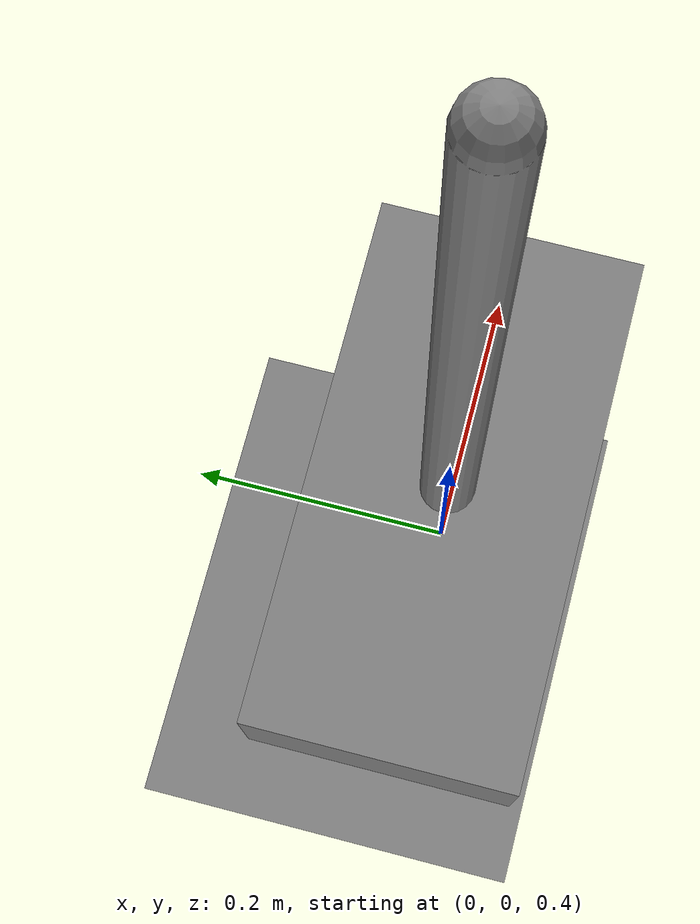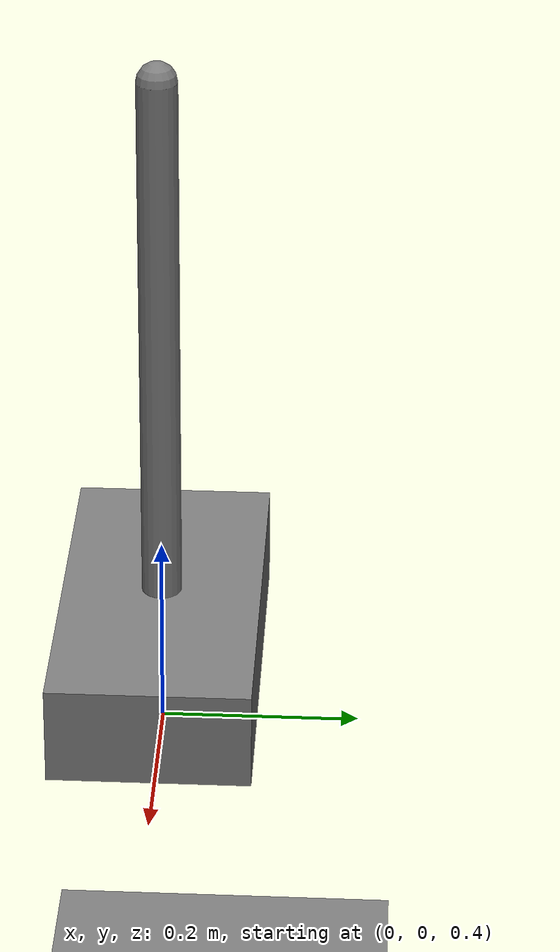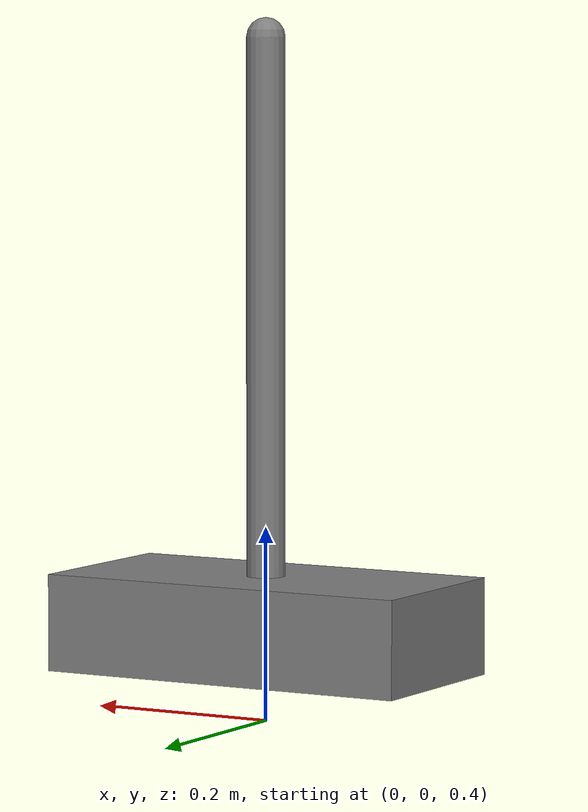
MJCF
<!-- Copyright 2026 -- CONTRIBUTORS. See LICENSE. -->
<!-- A cart on a rail with a pole on a hinge, the cart pushed by a motor. -->
<mujoco model="cartpole">
  <option timestep="0.01" integrator="Euler"/>
  <worldbody>
    <geom name="floor" type="plane" size="5 5 0.1"/>
    <body name="cart" pos="0 0 0.5">
      <joint name="slider" type="slide" axis="1 0 0" range="-2 2" damping="0.1"/>
      <geom name="cart" type="box" size="0.2 0.1 0.05" mass="1"/>
      <body name="pole">
        <joint name="hinge" axis="0 1 0" range="-90 90" armature="0.001"/>
        <geom name="pole" type="capsule" fromto="0 0 0 0 0 0.6" size="0.02" mass="0.1"/>
      </body>
    </body>
  </worldbody>
  <actuator>
    <motor name="push" joint="slider" gear="10" ctrlrange="-1 1"/>
  </actuator>
</mujoco>
